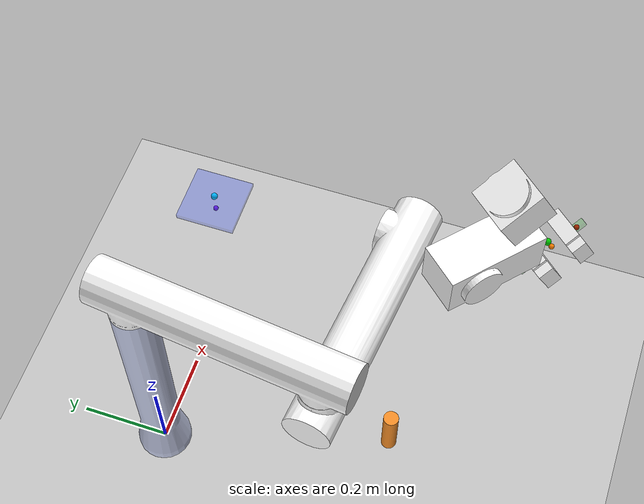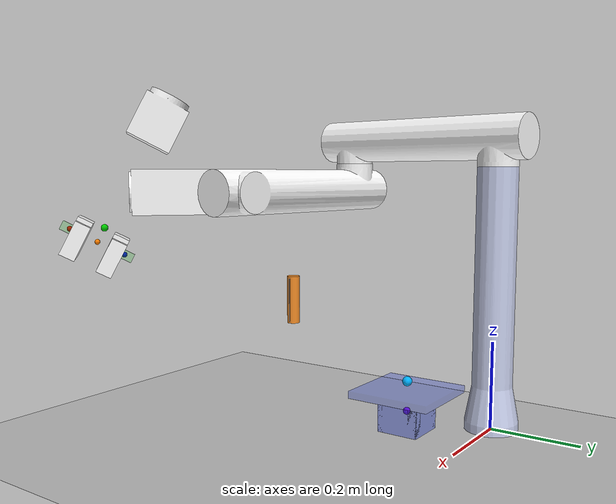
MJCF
<?xml version='1.0' encoding='utf-8'?>
<mujoco model="robotic_arm_v2_peg_in_hole_scene">
  <compiler angle="radian" meshdir="../assets" autolimits="true" />
  <option timestep="0.002" gravity="0 0 -9.81" integrator="implicitfast" />
  <default>
    <joint damping="0.05" armature="0.001" />
    <geom condim="3" friction="1 0.005 0.0001" />
  </default>
  <asset>
    <mesh name="base_link" file="meshes/base_link.STL" />
    <mesh name="link1" file="meshes/link1.STL" />
    <mesh name="link2" file="meshes/link2.STL" />
    <mesh name="link3" file="meshes/link3.STL" />
    <mesh name="link4" file="meshes/link4.STL" />
    <mesh name="fin1" file="meshes/fin1.STL" />
    <mesh name="fin2" file="meshes/fin2.STL" />
  </asset>
  <worldbody>
    <light name="main_light" pos="0 -1.5 2" dir="0 1 -1.5" />
    <camera name="overview" pos="1.2 -1.5 1.0" euler="1.1 0 0.7" />
    <camera name="vision_top" pos="0.30 -0.25 1.15" xyaxes="1 0 0 0 1 0" fovy="50" />
    <camera name="vision_retrain" pos="0.64110000 -0.10350000 0.41710000" xyaxes="0.77611400 0.63059263 -0.00000000 -0.41474435 0.51045459 0.75327500" fovy="36" />
    <geom name="ground" type="plane" pos="0 0 -0.02" size="2 2 0.02" rgba="0.75 0.75 0.75 1" />
    <body name="base_link">
      <inertial pos="0 2.220446049e-16 0.2764052478" mass="4.040873551" fullinertia="0.1295555828 0.1295555828 0.004557062749 3.418483803e-19 2.326294205e-18 -1.080908938e-17" />
      <geom name="base_link_visual" type="mesh" mesh="base_link" rgba="0.792156862745098 0.819607843137255 0.933333333333333 1" contype="0" conaffinity="0" group="1" density="0" />
      <body name="link1" pos="0 0 0.6" quat="0.6657110731 0 0 -0.7462096">
        <joint name="joint1" type="hinge" axis="0 0 -1" range="-3.14 3.14" limited="true" actuatorfrcrange="-100 100" />
        <inertial pos="0.197135744 -1.599765591e-07 0.05266429782" mass="4.442049315" fullinertia="0.005752458362 0.1115995073 0.1114326577 -3.479441381e-08 4.175890266e-08 -3.987951232e-08" />
        <geom name="link1_visual" type="mesh" mesh="link1" rgba="1 1 1 1" contype="0" conaffinity="0" group="1" density="0" />
        <body name="link2" pos="0.4 0 0" quat="1 0 0 0">
          <joint name="joint2" type="hinge" axis="0 0 -1" range="-3.14 3.14" limited="true" actuatorfrcrange="-100 100" />
          <inertial pos="0.1132369717 0.1613702855 -0.06340258205" mass="4.442048162" fullinertia="0.07685810263 0.04040187941 0.1115344032 -0.04963547572 0.0003768272575 0.0005369340826" />
          <geom name="link2_visual" type="mesh" mesh="link2" rgba="1 1 1 1" contype="0" conaffinity="0" group="1" density="0" />
          <body name="link3" pos="0.18609 0.35833 -0.065" quat="0.6279857048 0.6279880115 0.3250121443 0.3250109505">
            <joint name="joint3" type="hinge" axis="0 0 -1" range="-3.14 3.14" limited="true" actuatorfrcrange="-100 100" />
            <inertial pos="0.03269510656 0.01707145413 -0.06245433699" mass="2.155425877" fullinertia="0.005545206681 0.01030652181 0.01186052363 -0.00341790511 5.625979018e-05 2.937554051e-05" />
            <geom name="link3_visual" type="mesh" mesh="link3" rgba="1 1 1 1" contype="0" conaffinity="0" group="1" density="0" />
            <body name="link4" pos="0.062321 0.20472 -0.065" quat="0.1684903806 -0.1684909995 0.6867405767 -0.6867380542">
              <joint name="joint4" type="slide" axis="0 0 1" range="-0.2 0.2" limited="true" actuatorfrcrange="-100 100" />
              <inertial pos="-2.220446049e-15 3.042011087e-14 0.1648113208" mass="2.12" fullinertia="0.02002825786 0.02056025786 0.002849333333 0 -1.897353802e-18 -3.903127821e-18" />
              <geom name="link4_visual" type="mesh" mesh="link4" rgba="1 1 1 1" contype="0" conaffinity="0" group="1" density="0" />
              <site name="ee_site" pos="0 0 0.32" size="0.008" rgba="0 0.8 0 1" />
              <body name="fin1" pos="-0.1 0.04 0.32" quat="0.4999981634 -0.5 0.5000018366 -0.5">
                <joint name="joint5" type="slide" axis="0 0 1" range="-0.04 0.04" limited="true" actuatorfrcrange="-100 100" />
                <inertial pos="0.04 -0.03686046512 0.0175" mass="0.301" fullinertia="0.0002197935562 0.0002703604167 0.0004286998062 -1.558540623e-19 -1.423015351e-19 1.93123512e-19" />
                <geom name="fin1_visual" type="mesh" mesh="fin1" rgba="1 1 1 1" contype="0" conaffinity="0" group="1" density="0" />
                <site name="left_finger_tip_site" pos="0.04 -0.035 0.035" size="0.006" rgba="0.8 0 0 1" />
                <geom name="fin1_finger_collision" type="box" pos="0.04 -0.035 0.035" size="0.006 0.010 0.020" rgba="0 0.8 0 0.08" friction="2.0 0.02 0.002" condim="4" />
              </body>
              <body name="fin2" pos="-0.1 0.04 0.32" quat="0.4999981634 -0.5 0.5000018366 -0.5">
                <joint name="joint6" type="slide" axis="0 0 1" range="-0.04 0.04" limited="true" actuatorfrcrange="-100 100" />
                <inertial pos="0.04 -0.03686046512 0.1825" mass="0.301" fullinertia="0.0002197935562 0.0002703604167 0.0004286998062 -1.219727444e-19 -2.371692252e-19 3.964114193e-19" />
                <geom name="fin2_visual" type="mesh" mesh="fin2" rgba="1 1 1 1" contype="0" conaffinity="0" group="1" density="0" />
                <site name="right_finger_tip_site" pos="0.04 -0.035 0.165" size="0.006" rgba="0 0 0.8 1" />
                <site name="peg_tip_site" pos="0.04 -0.035 0.1" size="0.006" rgba="1 0.5 0 1" />
                <geom name="fin2_finger_collision" type="box" pos="0.04 -0.035 0.165" size="0.006 0.010 0.020" rgba="0 0.8 0 0.08" friction="2.0 0.02 0.002" condim="4" />
              </body>
            </body>
          </body>
        </body>
      </body>
    </body>
    <body name="grasp_object" pos="0.0625 -0.5111 0.2570">
      <freejoint name="grasp_object_freejoint" />
      <geom name="grasp_object_collision" type="cylinder" size="0.016 0.060" rgba="0.95 0.55 0.15 1" mass="0.035" friction="2.5 0.04 0.004" condim="4" />
      <geom name="grasp_object_spin_mark" type="box" pos="0.0165 0 0" size="0.0014 0.0014 0.055" rgba="0.18 0.10 0.04 1" contype="0" conaffinity="0" />
    </body>
    <body name="hole_fixture" pos="0.5111 0.0565 0.2371">
      <site name="hole_entry_site" pos="0 0 0" size="0.008" rgba="0 0.7 1 1" />
      <site name="hole_axis_site" pos="0 0 -0.05" size="0.006" rgba="0.45 0 0.9 1" />
      <geom name="hole_top_plate_visual" type="box" pos="0 0 -0.018" size="0.070 0.070 0.006" rgba="0.2 0.3 0.9 0.35" contype="0" conaffinity="0" />
      <geom name="hole_wall_pos_x" type="box" pos="0.0275 0 -0.050" size="0.0075 0.035 0.032" rgba="0.2 0.3 0.9 0.45" contype="0" conaffinity="0" />
      <geom name="hole_wall_neg_x" type="box" pos="-0.0275 0 -0.050" size="0.0075 0.035 0.032" rgba="0.2 0.3 0.9 0.45" contype="0" conaffinity="0" />
      <geom name="hole_wall_pos_y" type="box" pos="0 0.0275 -0.050" size="0.035 0.0075 0.032" rgba="0.2 0.3 0.9 0.45" contype="0" conaffinity="0" />
      <geom name="hole_wall_neg_y" type="box" pos="0 -0.0275 -0.050" size="0.035 0.0075 0.032" rgba="0.2 0.3 0.9 0.45" contype="0" conaffinity="0" />
    </body>
  </worldbody>
  <equality>
    <joint name="joint6_mimic_joint5" joint1="joint6" joint2="joint5" polycoef="0 -1 0 0 0" />
  </equality>
  <actuator>
    <position name="joint1_pos" joint="joint1" kp="80" kv="8" ctrllimited="true" ctrlrange="-3.14 3.14" />
    <position name="joint2_pos" joint="joint2" kp="80" kv="8" ctrllimited="true" ctrlrange="-3.14 3.14" />
    <position name="joint3_pos" joint="joint3" kp="80" kv="8" ctrllimited="true" ctrlrange="-3.14 3.14" />
    <position name="joint4_pos" joint="joint4" kp="200" kv="20" ctrllimited="true" ctrlrange="-0.2 0.2" />
    <position name="gripper_opening" joint="joint5" kp="200" kv="20" ctrllimited="true" ctrlrange="-0.04 0.04" />
  </actuator>
</mujoco>
